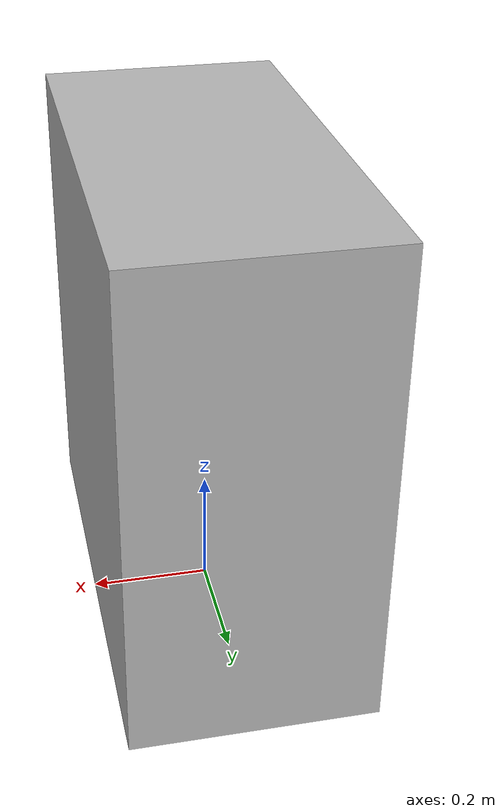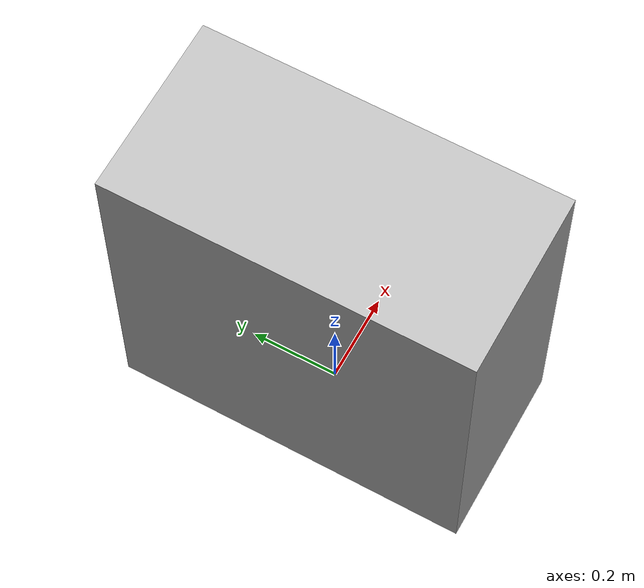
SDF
<?xml version="1.0"?>
<sdf version="1.6">
  <model name="robotics_testlab_B/hallway_cabinet">
    <link name="1_link">
      <collision name="1_col">
        <geometry>
          <box>
            <size>0.4 0.8 0.81</size>
          </box>
        </geometry>
        <pose>0.0 0.0 0.405 0 0 0</pose>
      </collision>
      <visual name="1_vis">
        <geometry>
          <box>
            <size>0.4 0.8 0.81</size>
          </box>
        </geometry>
        <pose>0.0 0.0 0.405 0 0 0</pose>
      </visual>
      <pose>0 0 0 0 0 0</pose>
    </link>
    <link name="on_top_of">
      <virtual_volume name="on_top_of_vv">
        <geometry>
          <box>
            <size>0.4 0.8 0.38</size>
          </box>
        </geometry>
        <pose>0.0 0.0 1.01 0 0 0</pose>
      </virtual_volume>
    </link>
    <static>true</static>
  </model>
</sdf>
